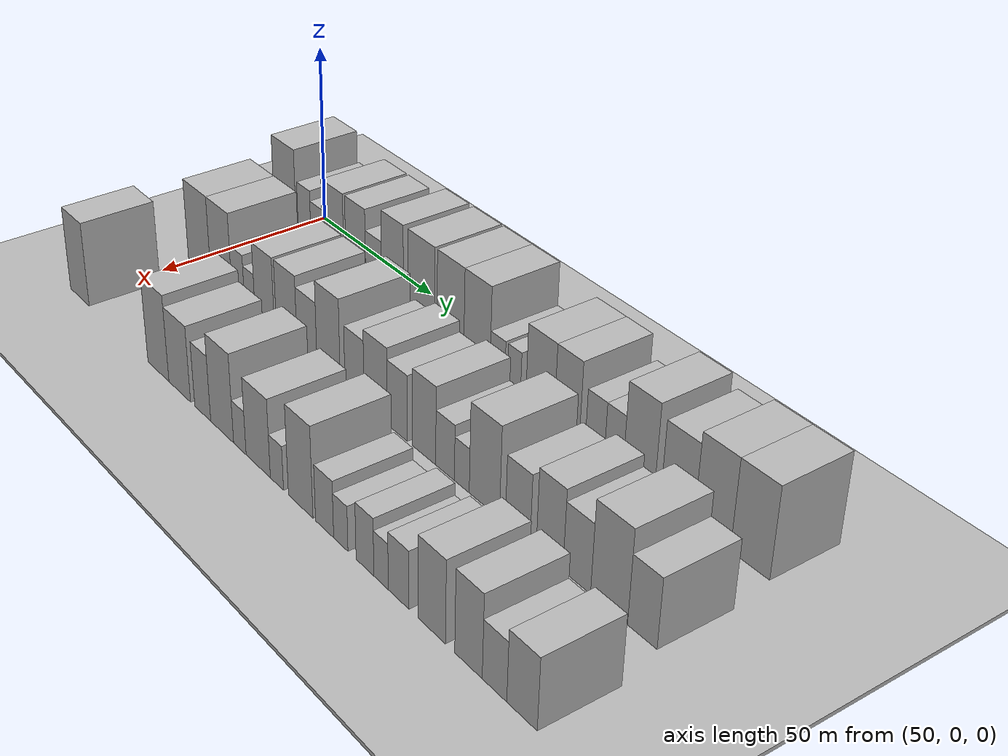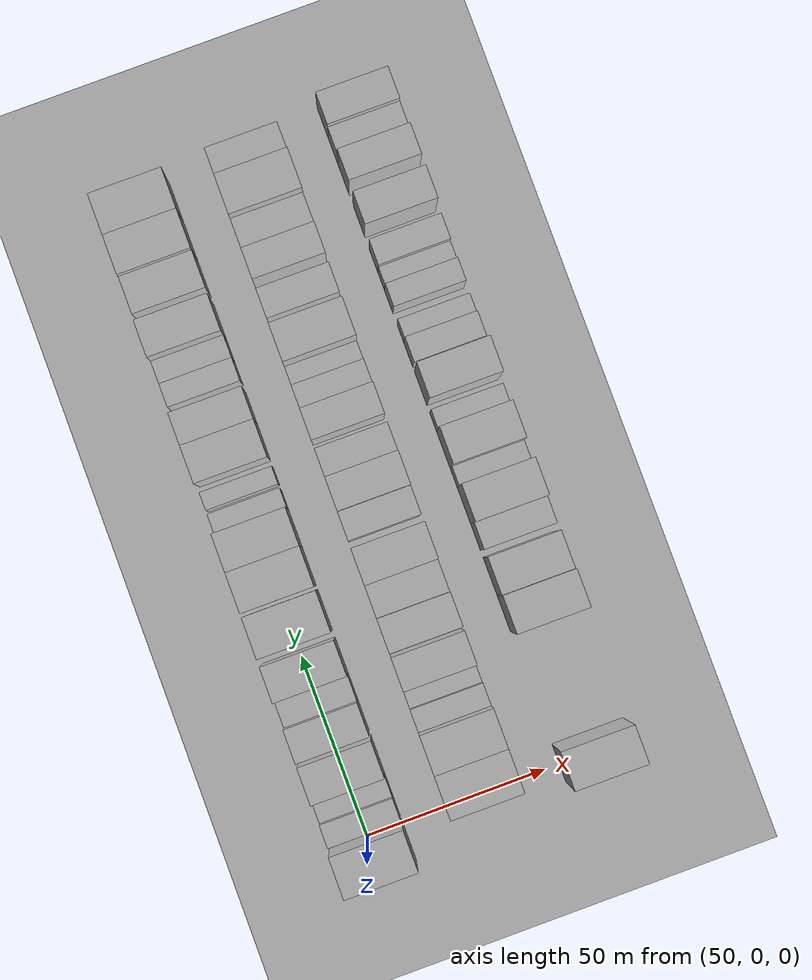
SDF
<sdf version="1.6">
 <world name="default">
  <include><name>ground_plane_1</name><uri>model://HANNAS_ground_plane</uri></include>
  <include>
   <name>ground_plane_2</name>
   <uri>model://HANNAS_ground_plane</uri>
   <pose>100 0 0  0 0 0</pose>
  </include>
  <model name="building_40">
   <static>1</static>
   <pose>50.0000 -4.5184 0 0.000000 0.000000 0.000000</pose>
   <link name="link">
    <pose>0 0 12.00 0 0 0</pose>
    <collision name="collision"><geometry><box><size>20.0000 11.3580 24.0000</size></box></geometry></collision>
    <visual name="visual">
     <cast_shadows>0</cast_shadows>
     <geometry><box><size>20.0000 11.3580 24.0000</size></box></geometry>
     <material>
      <script>
       <uri>model://HANNAS_wall/materials/scripts</uri>
       <uri>model://HANNAS_wall/materials/textures</uri>
       <name>vrc/HANNAS_wall</name>
      </script>
     </material>
    </visual>
   </link>
  </model>
  <model name="building_41">
   <static>1</static>
   <pose>50.0000 5.3556 0 0.000000 0.000000 0.000000</pose>
   <link name="link">
    <pose>0 0 7.50 0 0 0</pose>
    <collision name="collision"><geometry><box><size>20.0000 6.3901 15.0000</size></box></geometry></collision>
    <visual name="visual">
     <cast_shadows>0</cast_shadows>
     <geometry><box><size>20.0000 6.3901 15.0000</size></box></geometry>
     <material>
      <script>
       <uri>model://HANNAS_wall/materials/scripts</uri>
       <uri>model://HANNAS_wall/materials/textures</uri>
       <name>vrc/HANNAS_wall</name>
      </script>
     </material>
    </visual>
   </link>
  </model>
  <model name="building_42">
   <static>1</static>
   <pose>50.0000 11.5126 0 0.000000 0.000000 0.000000</pose>
   <link name="link">
    <pose>0 0 6.00 0 0 0</pose>
    <collision name="collision"><geometry><box><size>20.0000 5.9239 12.0000</size></box></geometry></collision>
    <visual name="visual">
     <cast_shadows>0</cast_shadows>
     <geometry><box><size>20.0000 5.9239 12.0000</size></box></geometry>
     <material>
      <script>
       <uri>model://HANNAS_wall/materials/scripts</uri>
       <uri>model://HANNAS_wall/materials/textures</uri>
       <name>vrc/HANNAS_wall</name>
      </script>
     </material>
    </visual>
   </link>
  </model>
  <model name="building_43">
   <static>1</static>
   <pose>50.0000 19.5705 0 0.000000 0.000000 0.000000</pose>
   <link name="link">
    <pose>0 0 10.50 0 0 0</pose>
    <collision name="collision"><geometry><box><size>20.0000 10.1919 21.0000</size></box></geometry></collision>
    <visual name="visual">
     <cast_shadows>0</cast_shadows>
     <geometry><box><size>20.0000 10.1919 21.0000</size></box></geometry>
     <material>
      <script>
       <uri>model://HANNAS_wall/materials/scripts</uri>
       <uri>model://HANNAS_wall/materials/textures</uri>
       <name>vrc/HANNAS_wall</name>
      </script>
     </material>
    </visual>
   </link>
  </model>
  <model name="building_44">
   <static>1</static>
   <pose>50.0000 30.2833 0 0.000000 0.000000 0.000000</pose>
   <link name="link">
    <pose>0 0 10.50 0 0 0</pose>
    <collision name="collision"><geometry><box><size>20.0000 9.2336 21.0000</size></box></geometry></collision>
    <visual name="visual">
     <cast_shadows>0</cast_shadows>
     <geometry><box><size>20.0000 9.2336 21.0000</size></box></geometry>
     <material>
      <script>
       <uri>model://HANNAS_wall/materials/scripts</uri>
       <uri>model://HANNAS_wall/materials/textures</uri>
       <name>vrc/HANNAS_wall</name>
      </script>
     </material>
    </visual>
   </link>
  </model>
  <model name="building_45">
   <static>1</static>
   <pose>50.0000 38.5328 0 0.000000 0.000000 0.000000</pose>
   <link name="link">
    <pose>0 0 7.50 0 0 0</pose>
    <collision name="collision"><geometry><box><size>20.0000 7.2654 15.0000</size></box></geometry></collision>
    <visual name="visual">
     <cast_shadows>0</cast_shadows>
     <geometry><box><size>20.0000 7.2654 15.0000</size></box></geometry>
     <material>
      <script>
       <uri>model://HANNAS_wall/materials/scripts</uri>
       <uri>model://HANNAS_wall/materials/textures</uri>
       <name>vrc/HANNAS_wall</name>
      </script>
     </material>
    </visual>
   </link>
  </model>
  <model name="building_46">
   <static>1</static>
   <pose>50.0000 47.0347 0 0.000000 0.000000 0.000000</pose>
   <link name="link">
    <pose>0 0 12.00 0 0 0</pose>
    <collision name="collision"><geometry><box><size>20.0000 9.7384 24.0000</size></box></geometry></collision>
    <visual name="visual">
     <cast_shadows>0</cast_shadows>
     <geometry><box><size>20.0000 9.7384 24.0000</size></box></geometry>
     <material>
      <script>
       <uri>model://HANNAS_wall/materials/scripts</uri>
       <uri>model://HANNAS_wall/materials/textures</uri>
       <name>vrc/HANNAS_wall</name>
      </script>
     </material>
    </visual>
   </link>
  </model>
  <model name="building_47">
   <static>1</static>
   <pose>50.0000 59.5788 0 0.000000 0.000000 0.000000</pose>
   <link name="link">
    <pose>0 0 12.00 0 0 0</pose>
    <collision name="collision"><geometry><box><size>20.0000 11.3498 24.0000</size></box></geometry></collision>
    <visual name="visual">
     <cast_shadows>0</cast_shadows>
     <geometry><box><size>20.0000 11.3498 24.0000</size></box></geometry>
     <material>
      <script>
       <uri>model://HANNAS_wall/materials/scripts</uri>
       <uri>model://HANNAS_wall/materials/textures</uri>
       <name>vrc/HANNAS_wall</name>
      </script>
     </material>
    </visual>
   </link>
  </model>
  <model name="building_48">
   <static>1</static>
   <pose>50.0000 71.7756 0 0.000000 0.000000 0.000000</pose>
   <link name="link">
    <pose>0 0 12.00 0 0 0</pose>
    <collision name="collision"><geometry><box><size>20.0000 11.0438 24.0000</size></box></geometry></collision>
    <visual name="visual">
     <cast_shadows>0</cast_shadows>
     <geometry><box><size>20.0000 11.0438 24.0000</size></box></geometry>
     <material>
      <script>
       <uri>model://HANNAS_wall/materials/scripts</uri>
       <uri>model://HANNAS_wall/materials/textures</uri>
       <name>vrc/HANNAS_wall</name>
      </script>
     </material>
    </visual>
   </link>
  </model>
  <model name="building_49">
   <static>1</static>
   <pose>50.0000 82.5181 0 0.000000 0.000000 0.000000</pose>
   <link name="link">
    <pose>0 0 12.00 0 0 0</pose>
    <collision name="collision"><geometry><box><size>20.0000 10.4412 24.0000</size></box></geometry></collision>
    <visual name="visual">
     <cast_shadows>0</cast_shadows>
     <geometry><box><size>20.0000 10.4412 24.0000</size></box></geometry>
     <material>
      <script>
       <uri>model://HANNAS_wall/materials/scripts</uri>
       <uri>model://HANNAS_wall/materials/textures</uri>
       <name>vrc/HANNAS_wall</name>
      </script>
     </material>
    </visual>
   </link>
  </model>
  <model name="building_50">
   <static>1</static>
   <pose>50.0000 90.5977 0 0.000000 0.000000 0.000000</pose>
   <link name="link">
    <pose>0 0 6.00 0 0 0</pose>
    <collision name="collision"><geometry><box><size>20.0000 5.7179 12.0000</size></box></geometry></collision>
    <visual name="visual">
     <cast_shadows>0</cast_shadows>
     <geometry><box><size>20.0000 5.7179 12.0000</size></box></geometry>
     <material>
      <script>
       <uri>model://HANNAS_wall/materials/scripts</uri>
       <uri>model://HANNAS_wall/materials/textures</uri>
       <name>vrc/HANNAS_wall</name>
      </script>
     </material>
    </visual>
   </link>
  </model>
  <model name="building_51">
   <static>1</static>
   <pose>50.0000 96.9436 0 0.000000 0.000000 0.000000</pose>
   <link name="link">
    <pose>0 0 6.00 0 0 0</pose>
    <collision name="collision"><geometry><box><size>20.0000 4.9740 12.0000</size></box></geometry></collision>
    <visual name="visual">
     <cast_shadows>0</cast_shadows>
     <geometry><box><size>20.0000 4.9740 12.0000</size></box></geometry>
     <material>
      <script>
       <uri>model://HANNAS_wall/materials/scripts</uri>
       <uri>model://HANNAS_wall/materials/textures</uri>
       <name>vrc/HANNAS_wall</name>
      </script>
     </material>
    </visual>
   </link>
  </model>
  <model name="building_52">
   <static>1</static>
   <pose>50.0000 106.6325 0 0.000000 0.000000 0.000000</pose>
   <link name="link">
    <pose>0 0 10.50 0 0 0</pose>
    <collision name="collision"><geometry><box><size>20.0000 10.4038 21.0000</size></box></geometry></collision>
    <visual name="visual">
     <cast_shadows>0</cast_shadows>
     <geometry><box><size>20.0000 10.4038 21.0000</size></box></geometry>
     <material>
      <script>
       <uri>model://HANNAS_wall/materials/scripts</uri>
       <uri>model://HANNAS_wall/materials/textures</uri>
       <name>vrc/HANNAS_wall</name>
      </script>
     </material>
    </visual>
   </link>
  </model>
  <model name="building_53">
   <static>1</static>
   <pose>50.0000 116.3029 0 0.000000 0.000000 0.000000</pose>
   <link name="link">
    <pose>0 0 10.50 0 0 0</pose>
    <collision name="collision"><geometry><box><size>20.0000 8.9370 21.0000</size></box></geometry></collision>
    <visual name="visual">
     <cast_shadows>0</cast_shadows>
     <geometry><box><size>20.0000 8.9370 21.0000</size></box></geometry>
     <material>
      <script>
       <uri>model://HANNAS_wall/materials/scripts</uri>
       <uri>model://HANNAS_wall/materials/textures</uri>
       <name>vrc/HANNAS_wall</name>
      </script>
     </material>
    </visual>
   </link>
  </model>
  <model name="building_54">
   <static>1</static>
   <pose>50.0000 126.0324 0 0.000000 0.000000 0.000000</pose>
   <link name="link">
    <pose>0 0 7.50 0 0 0</pose>
    <collision name="collision"><geometry><box><size>20.0000 6.5221 15.0000</size></box></geometry></collision>
    <visual name="visual">
     <cast_shadows>0</cast_shadows>
     <geometry><box><size>20.0000 6.5221 15.0000</size></box></geometry>
     <material>
      <script>
       <uri>model://HANNAS_wall/materials/scripts</uri>
       <uri>model://HANNAS_wall/materials/textures</uri>
       <name>vrc/HANNAS_wall</name>
      </script>
     </material>
    </visual>
   </link>
  </model>
  <model name="building_55">
   <static>1</static>
   <pose>50.0000 132.4087 0 0.000000 0.000000 0.000000</pose>
   <link name="link">
    <pose>0 0 7.50 0 0 0</pose>
    <collision name="collision"><geometry><box><size>20.0000 6.2305 15.0000</size></box></geometry></collision>
    <visual name="visual">
     <cast_shadows>0</cast_shadows>
     <geometry><box><size>20.0000 6.2305 15.0000</size></box></geometry>
     <material>
      <script>
       <uri>model://HANNAS_wall/materials/scripts</uri>
       <uri>model://HANNAS_wall/materials/textures</uri>
       <name>vrc/HANNAS_wall</name>
      </script>
     </material>
    </visual>
   </link>
  </model>
  <model name="building_56">
   <static>1</static>
   <pose>50.0000 140.6190 0 0.000000 0.000000 0.000000</pose>
   <link name="link">
    <pose>0 0 12.00 0 0 0</pose>
    <collision name="collision"><geometry><box><size>20.0000 10.1901 24.0000</size></box></geometry></collision>
    <visual name="visual">
     <cast_shadows>0</cast_shadows>
     <geometry><box><size>20.0000 10.1901 24.0000</size></box></geometry>
     <material>
      <script>
       <uri>model://HANNAS_wall/materials/scripts</uri>
       <uri>model://HANNAS_wall/materials/textures</uri>
       <name>vrc/HANNAS_wall</name>
      </script>
     </material>
    </visual>
   </link>
  </model>
  <model name="building_57">
   <static>1</static>
   <pose>50.0000 152.8733 0 0.000000 0.000000 0.000000</pose>
   <link name="link">
    <pose>0 0 10.50 0 0 0</pose>
    <collision name="collision"><geometry><box><size>20.0000 10.3183 21.0000</size></box></geometry></collision>
    <visual name="visual">
     <cast_shadows>0</cast_shadows>
     <geometry><box><size>20.0000 10.3183 21.0000</size></box></geometry>
     <material>
      <script>
       <uri>model://HANNAS_wall/materials/scripts</uri>
       <uri>model://HANNAS_wall/materials/textures</uri>
       <name>vrc/HANNAS_wall</name>
      </script>
     </material>
    </visual>
   </link>
  </model>
  <model name="building_58">
   <static>1</static>
   <pose>50.0000 163.4792 0 0.000000 0.000000 0.000000</pose>
   <link name="link">
    <pose>0 0 12.00 0 0 0</pose>
    <collision name="collision"><geometry><box><size>20.0000 10.8936 24.0000</size></box></geometry></collision>
    <visual name="visual">
     <cast_shadows>0</cast_shadows>
     <geometry><box><size>20.0000 10.8936 24.0000</size></box></geometry>
     <material>
      <script>
       <uri>model://HANNAS_wall/materials/scripts</uri>
       <uri>model://HANNAS_wall/materials/textures</uri>
       <name>vrc/HANNAS_wall</name>
      </script>
     </material>
    </visual>
   </link>
  </model>
  <model name="building_59">
   <static>1</static>
   <pose>50.0000 174.5568 0 0.000000 0.000000 0.000000</pose>
   <link name="link">
    <pose>0 0 12.00 0 0 0</pose>
    <collision name="collision"><geometry><box><size>20.0000 11.2616 24.0000</size></box></geometry></collision>
    <visual name="visual">
     <cast_shadows>0</cast_shadows>
     <geometry><box><size>20.0000 11.2616 24.0000</size></box></geometry>
     <material>
      <script>
       <uri>model://HANNAS_wall/materials/scripts</uri>
       <uri>model://HANNAS_wall/materials/textures</uri>
       <name>vrc/HANNAS_wall</name>
      </script>
     </material>
    </visual>
   </link>
  </model>
  <model name="building_117">
   <static>1</static>
   <pose>82.0000 5.0783 0 0.000000 0.000000 0.000000</pose>
   <link name="link">
    <pose>0 0 12.00 0 0 0</pose>
    <collision name="collision"><geometry><box><size>20.0000 11.8753 24.0000</size></box></geometry></collision>
    <visual name="visual">
     <cast_shadows>0</cast_shadows>
     <geometry><box><size>20.0000 11.8753 24.0000</size></box></geometry>
     <material>
      <script>
       <uri>model://HANNAS_wall/materials/scripts</uri>
       <uri>model://HANNAS_wall/materials/textures</uri>
       <name>vrc/HANNAS_wall</name>
      </script>
     </material>
    </visual>
   </link>
  </model>
  <model name="building_118">
   <static>1</static>
   <pose>82.0000 16.4562 0 0.000000 0.000000 0.000000</pose>
   <link name="link">
    <pose>0 0 12.00 0 0 0</pose>
    <collision name="collision"><geometry><box><size>20.0000 10.8805 24.0000</size></box></geometry></collision>
    <visual name="visual">
     <cast_shadows>0</cast_shadows>
     <geometry><box><size>20.0000 10.8805 24.0000</size></box></geometry>
     <material>
      <script>
       <uri>model://HANNAS_wall/materials/scripts</uri>
       <uri>model://HANNAS_wall/materials/textures</uri>
       <name>vrc/HANNAS_wall</name>
      </script>
     </material>
    </visual>
   </link>
  </model>
  <model name="building_119">
   <static>1</static>
   <pose>82.0000 25.0287 0 0.000000 0.000000 0.000000</pose>
   <link name="link">
    <pose>0 0 7.50 0 0 0</pose>
    <collision name="collision"><geometry><box><size>20.0000 6.2645 15.0000</size></box></geometry></collision>
    <visual name="visual">
     <cast_shadows>0</cast_shadows>
     <geometry><box><size>20.0000 6.2645 15.0000</size></box></geometry>
     <material>
      <script>
       <uri>model://HANNAS_wall/materials/scripts</uri>
       <uri>model://HANNAS_wall/materials/textures</uri>
       <name>vrc/HANNAS_wall</name>
      </script>
     </material>
    </visual>
   </link>
  </model>
  <model name="building_120">
   <static>1</static>
   <pose>82.0000 30.7223 0 0.000000 0.000000 0.000000</pose>
   <link name="link">
    <pose>0 0 6.00 0 0 0</pose>
    <collision name="collision"><geometry><box><size>20.0000 5.1226 12.0000</size></box></geometry></collision>
    <visual name="visual">
     <cast_shadows>0</cast_shadows>
     <geometry><box><size>20.0000 5.1226 12.0000</size></box></geometry>
     <material>
      <script>
       <uri>model://HANNAS_wall/materials/scripts</uri>
       <uri>model://HANNAS_wall/materials/textures</uri>
       <name>vrc/HANNAS_wall</name>
      </script>
     </material>
    </visual>
   </link>
  </model>
  <model name="building_121">
   <static>1</static>
   <pose>82.0000 37.9292 0 0.000000 0.000000 0.000000</pose>
   <link name="link">
    <pose>0 0 10.50 0 0 0</pose>
    <collision name="collision"><geometry><box><size>20.0000 9.2912 21.0000</size></box></geometry></collision>
    <visual name="visual">
     <cast_shadows>0</cast_shadows>
     <geometry><box><size>20.0000 9.2912 21.0000</size></box></geometry>
     <material>
      <script>
       <uri>model://HANNAS_wall/materials/scripts</uri>
       <uri>model://HANNAS_wall/materials/textures</uri>
       <name>vrc/HANNAS_wall</name>
      </script>
     </material>
    </visual>
   </link>
  </model>
  <model name="building_122">
   <static>1</static>
   <pose>82.0000 48.3367 0 0.000000 0.000000 0.000000</pose>
   <link name="link">
    <pose>0 0 10.50 0 0 0</pose>
    <collision name="collision"><geometry><box><size>20.0000 9.5238 21.0000</size></box></geometry></collision>
    <visual name="visual">
     <cast_shadows>0</cast_shadows>
     <geometry><box><size>20.0000 9.5238 21.0000</size></box></geometry>
     <material>
      <script>
       <uri>model://HANNAS_wall/materials/scripts</uri>
       <uri>model://HANNAS_wall/materials/textures</uri>
       <name>vrc/HANNAS_wall</name>
      </script>
     </material>
    </visual>
   </link>
  </model>
  <model name="building_123">
   <static>1</static>
   <pose>82.0000 57.5635 0 0.000000 0.000000 0.000000</pose>
   <link name="link">
    <pose>0 0 9.00 0 0 0</pose>
    <collision name="collision"><geometry><box><size>20.0000 8.9298 18.0000</size></box></geometry></collision>
    <visual name="visual">
     <cast_shadows>0</cast_shadows>
     <geometry><box><size>20.0000 8.9298 18.0000</size></box></geometry>
     <material>
      <script>
       <uri>model://HANNAS_wall/materials/scripts</uri>
       <uri>model://HANNAS_wall/materials/textures</uri>
       <name>vrc/HANNAS_wall</name>
      </script>
     </material>
    </visual>
   </link>
  </model>
  <model name="building_124">
   <static>1</static>
   <pose>82.0000 67.0926 0 0.000000 0.000000 0.000000</pose>
   <link name="link">
    <pose>0 0 12.00 0 0 0</pose>
    <collision name="collision"><geometry><box><size>20.0000 10.1286 24.0000</size></box></geometry></collision>
    <visual name="visual">
     <cast_shadows>0</cast_shadows>
     <geometry><box><size>20.0000 10.1286 24.0000</size></box></geometry>
     <material>
      <script>
       <uri>model://HANNAS_wall/materials/scripts</uri>
       <uri>model://HANNAS_wall/materials/textures</uri>
       <name>vrc/HANNAS_wall</name>
      </script>
     </material>
    </visual>
   </link>
  </model>
  <model name="building_125">
   <static>1</static>
   <pose>82.0000 78.1693 0 0.000000 0.000000 0.000000</pose>
   <link name="link">
    <pose>0 0 9.00 0 0 0</pose>
    <collision name="collision"><geometry><box><size>20.0000 8.0248 18.0000</size></box></geometry></collision>
    <visual name="visual">
     <cast_shadows>0</cast_shadows>
     <geometry><box><size>20.0000 8.0248 18.0000</size></box></geometry>
     <material>
      <script>
       <uri>model://HANNAS_wall/materials/scripts</uri>
       <uri>model://HANNAS_wall/materials/textures</uri>
       <name>vrc/HANNAS_wall</name>
      </script>
     </material>
    </visual>
   </link>
  </model>
  <model name="building_126">
   <static>1</static>
   <pose>82.0000 86.8775 0 0.000000 0.000000 0.000000</pose>
   <link name="link">
    <pose>0 0 10.50 0 0 0</pose>
    <collision name="collision"><geometry><box><size>20.0000 9.3914 21.0000</size></box></geometry></collision>
    <visual name="visual">
     <cast_shadows>0</cast_shadows>
     <geometry><box><size>20.0000 9.3914 21.0000</size></box></geometry>
     <material>
      <script>
       <uri>model://HANNAS_wall/materials/scripts</uri>
       <uri>model://HANNAS_wall/materials/textures</uri>
       <name>vrc/HANNAS_wall</name>
      </script>
     </material>
    </visual>
   </link>
  </model>
  <model name="building_127">
   <static>1</static>
   <pose>82.0000 95.5494 0 0.000000 0.000000 0.000000</pose>
   <link name="link">
    <pose>0 0 9.00 0 0 0</pose>
    <collision name="collision"><geometry><box><size>20.0000 7.9524 18.0000</size></box></geometry></collision>
    <visual name="visual">
     <cast_shadows>0</cast_shadows>
     <geometry><box><size>20.0000 7.9524 18.0000</size></box></geometry>
     <material>
      <script>
       <uri>model://HANNAS_wall/materials/scripts</uri>
       <uri>model://HANNAS_wall/materials/textures</uri>
       <name>vrc/HANNAS_wall</name>
      </script>
     </material>
    </visual>
   </link>
  </model>
  <model name="building_128">
   <static>1</static>
   <pose>82.0000 105.9074 0 0.000000 0.000000 0.000000</pose>
   <link name="link">
    <pose>0 0 10.50 0 0 0</pose>
    <collision name="collision"><geometry><box><size>20.0000 8.7637 21.0000</size></box></geometry></collision>
    <visual name="visual">
     <cast_shadows>0</cast_shadows>
     <geometry><box><size>20.0000 8.7637 21.0000</size></box></geometry>
     <material>
      <script>
       <uri>model://HANNAS_wall/materials/scripts</uri>
       <uri>model://HANNAS_wall/materials/textures</uri>
       <name>vrc/HANNAS_wall</name>
      </script>
     </material>
    </visual>
   </link>
  </model>
  <model name="building_129">
   <static>1</static>
   <pose>82.0000 113.7479 0 0.000000 0.000000 0.000000</pose>
   <link name="link">
    <pose>0 0 7.50 0 0 0</pose>
    <collision name="collision"><geometry><box><size>20.0000 6.9171 15.0000</size></box></geometry></collision>
    <visual name="visual">
     <cast_shadows>0</cast_shadows>
     <geometry><box><size>20.0000 6.9171 15.0000</size></box></geometry>
     <material>
      <script>
       <uri>model://HANNAS_wall/materials/scripts</uri>
       <uri>model://HANNAS_wall/materials/textures</uri>
       <name>vrc/HANNAS_wall</name>
      </script>
     </material>
    </visual>
   </link>
  </model>
  <model name="building_130">
   <static>1</static>
   <pose>82.0000 119.8962 0 0.000000 0.000000 0.000000</pose>
   <link name="link">
    <pose>0 0 6.00 0 0 0</pose>
    <collision name="collision"><geometry><box><size>20.0000 5.3795 12.0000</size></box></geometry></collision>
    <visual name="visual">
     <cast_shadows>0</cast_shadows>
     <geometry><box><size>20.0000 5.3795 12.0000</size></box></geometry>
     <material>
      <script>
       <uri>model://HANNAS_wall/materials/scripts</uri>
       <uri>model://HANNAS_wall/materials/textures</uri>
       <name>vrc/HANNAS_wall</name>
      </script>
     </material>
    </visual>
   </link>
  </model>
  <model name="building_131">
   <static>1</static>
   <pose>82.0000 127.9002 0 0.000000 0.000000 0.000000</pose>
   <link name="link">
    <pose>0 0 12.00 0 0 0</pose>
    <collision name="collision"><geometry><box><size>20.0000 10.6285 24.0000</size></box></geometry></collision>
    <visual name="visual">
     <cast_shadows>0</cast_shadows>
     <geometry><box><size>20.0000 10.6285 24.0000</size></box></geometry>
     <material>
      <script>
       <uri>model://HANNAS_wall/materials/scripts</uri>
       <uri>model://HANNAS_wall/materials/textures</uri>
       <name>vrc/HANNAS_wall</name>
      </script>
     </material>
    </visual>
   </link>
  </model>
  <model name="building_132">
   <static>1</static>
   <pose>82.0000 139.3819 0 0.000000 0.000000 0.000000</pose>
   <link name="link">
    <pose>0 0 9.00 0 0 0</pose>
    <collision name="collision"><geometry><box><size>20.0000 8.3347 18.0000</size></box></geometry></collision>
    <visual name="visual">
     <cast_shadows>0</cast_shadows>
     <geometry><box><size>20.0000 8.3347 18.0000</size></box></geometry>
     <material>
      <script>
       <uri>model://HANNAS_wall/materials/scripts</uri>
       <uri>model://HANNAS_wall/materials/textures</uri>
       <name>vrc/HANNAS_wall</name>
      </script>
     </material>
    </visual>
   </link>
  </model>
  <model name="building_133">
   <static>1</static>
   <pose>82.0000 149.8650 0 0.000000 0.000000 0.000000</pose>
   <link name="link">
    <pose>0 0 10.50 0 0 0</pose>
    <collision name="collision"><geometry><box><size>20.0000 8.6315 21.0000</size></box></geometry></collision>
    <visual name="visual">
     <cast_shadows>0</cast_shadows>
     <geometry><box><size>20.0000 8.6315 21.0000</size></box></geometry>
     <material>
      <script>
       <uri>model://HANNAS_wall/materials/scripts</uri>
       <uri>model://HANNAS_wall/materials/textures</uri>
       <name>vrc/HANNAS_wall</name>
      </script>
     </material>
    </visual>
   </link>
  </model>
  <model name="building_134">
   <static>1</static>
   <pose>82.0000 158.4882 0 0.000000 0.000000 0.000000</pose>
   <link name="link">
    <pose>0 0 9.00 0 0 0</pose>
    <collision name="collision"><geometry><box><size>20.0000 8.6150 18.0000</size></box></geometry></collision>
    <visual name="visual">
     <cast_shadows>0</cast_shadows>
     <geometry><box><size>20.0000 8.6150 18.0000</size></box></geometry>
     <material>
      <script>
       <uri>model://HANNAS_wall/materials/scripts</uri>
       <uri>model://HANNAS_wall/materials/textures</uri>
       <name>vrc/HANNAS_wall</name>
      </script>
     </material>
    </visual>
   </link>
  </model>
  <model name="building_135">
   <static>1</static>
   <pose>82.0000 168.3484 0 0.000000 0.000000 0.000000</pose>
   <link name="link">
    <pose>0 0 12.00 0 0 0</pose>
    <collision name="collision"><geometry><box><size>20.0000 11.1055 24.0000</size></box></geometry></collision>
    <visual name="visual">
     <cast_shadows>0</cast_shadows>
     <geometry><box><size>20.0000 11.1055 24.0000</size></box></geometry>
     <material>
      <script>
       <uri>model://HANNAS_wall/materials/scripts</uri>
       <uri>model://HANNAS_wall/materials/textures</uri>
       <name>vrc/HANNAS_wall</name>
      </script>
     </material>
    </visual>
   </link>
  </model>
  <model name="building_136">
   <static>1</static>
   <pose>82.0000 178.1670 0 0.000000 0.000000 0.000000</pose>
   <link name="link">
    <pose>0 0 9.00 0 0 0</pose>
    <collision name="collision"><geometry><box><size>20.0000 8.5316 18.0000</size></box></geometry></collision>
    <visual name="visual">
     <cast_shadows>0</cast_shadows>
     <geometry><box><size>20.0000 8.5316 18.0000</size></box></geometry>
     <material>
      <script>
       <uri>model://HANNAS_wall/materials/scripts</uri>
       <uri>model://HANNAS_wall/materials/textures</uri>
       <name>vrc/HANNAS_wall</name>
      </script>
     </material>
    </visual>
   </link>
  </model>
  <model name="building_198">
   <static>1</static>
   <pose>114.0000 0.5381 0 0.000000 0.000000 0.000000</pose>
   <link name="link">
    <pose>0 0 12.00 0 0 0</pose>
    <collision name="collision"><geometry><box><size>20.0000 10.5245 24.0000</size></box></geometry></collision>
    <visual name="visual">
     <cast_shadows>0</cast_shadows>
     <geometry><box><size>20.0000 10.5245 24.0000</size></box></geometry>
     <material>
      <script>
       <uri>model://HANNAS_wall/materials/scripts</uri>
       <uri>model://HANNAS_wall/materials/textures</uri>
       <name>vrc/HANNAS_wall</name>
      </script>
     </material>
    </visual>
   </link>
  </model>
  <model name="building_199">
   <static>1</static>
   <pose>114.0000 42.4785 0 0.000000 0.000000 0.000000</pose>
   <link name="link">
    <pose>0 0 12.00 0 0 0</pose>
    <collision name="collision"><geometry><box><size>20.0000 10.4521 24.0000</size></box></geometry></collision>
    <visual name="visual">
     <cast_shadows>0</cast_shadows>
     <geometry><box><size>20.0000 10.4521 24.0000</size></box></geometry>
     <material>
      <script>
       <uri>model://HANNAS_wall/materials/scripts</uri>
       <uri>model://HANNAS_wall/materials/textures</uri>
       <name>vrc/HANNAS_wall</name>
      </script>
     </material>
    </visual>
   </link>
  </model>
  <model name="building_200">
   <static>1</static>
   <pose>114.0000 52.9152 0 0.000000 0.000000 0.000000</pose>
   <link name="link">
    <pose>0 0 10.50 0 0 0</pose>
    <collision name="collision"><geometry><box><size>20.0000 10.4213 21.0000</size></box></geometry></collision>
    <visual name="visual">
     <cast_shadows>0</cast_shadows>
     <geometry><box><size>20.0000 10.4213 21.0000</size></box></geometry>
     <material>
      <script>
       <uri>model://HANNAS_wall/materials/scripts</uri>
       <uri>model://HANNAS_wall/materials/textures</uri>
       <name>vrc/HANNAS_wall</name>
      </script>
     </material>
    </visual>
   </link>
  </model>
  <model name="building_201">
   <static>1</static>
   <pose>114.0000 63.8173 0 0.000000 0.000000 0.000000</pose>
   <link name="link">
    <pose>0 0 9.00 0 0 0</pose>
    <collision name="collision"><geometry><box><size>20.0000 7.3829 18.0000</size></box></geometry></collision>
    <visual name="visual">
     <cast_shadows>0</cast_shadows>
     <geometry><box><size>20.0000 7.3829 18.0000</size></box></geometry>
     <material>
      <script>
       <uri>model://HANNAS_wall/materials/scripts</uri>
       <uri>model://HANNAS_wall/materials/textures</uri>
       <name>vrc/HANNAS_wall</name>
      </script>
     </material>
    </visual>
   </link>
  </model>
  <model name="building_202">
   <static>1</static>
   <pose>114.0000 72.6660 0 0.000000 0.000000 0.000000</pose>
   <link name="link">
    <pose>0 0 12.00 0 0 0</pose>
    <collision name="collision"><geometry><box><size>20.0000 10.3144 24.0000</size></box></geometry></collision>
    <visual name="visual">
     <cast_shadows>0</cast_shadows>
     <geometry><box><size>20.0000 10.3144 24.0000</size></box></geometry>
     <material>
      <script>
       <uri>model://HANNAS_wall/materials/scripts</uri>
       <uri>model://HANNAS_wall/materials/textures</uri>
       <name>vrc/HANNAS_wall</name>
      </script>
     </material>
    </visual>
   </link>
  </model>
  <model name="building_203">
   <static>1</static>
   <pose>114.0000 80.5458 0 0.000000 0.000000 0.000000</pose>
   <link name="link">
    <pose>0 0 6.00 0 0 0</pose>
    <collision name="collision"><geometry><box><size>20.0000 5.4453 12.0000</size></box></geometry></collision>
    <visual name="visual">
     <cast_shadows>0</cast_shadows>
     <geometry><box><size>20.0000 5.4453 12.0000</size></box></geometry>
     <material>
      <script>
       <uri>model://HANNAS_wall/materials/scripts</uri>
       <uri>model://HANNAS_wall/materials/textures</uri>
       <name>vrc/HANNAS_wall</name>
      </script>
     </material>
    </visual>
   </link>
  </model>
  <model name="building_204">
   <static>1</static>
   <pose>114.0000 88.4292 0 0.000000 0.000000 0.000000</pose>
   <link name="link">
    <pose>0 0 10.50 0 0 0</pose>
    <collision name="collision"><geometry><box><size>20.0000 10.3215 21.0000</size></box></geometry></collision>
    <visual name="visual">
     <cast_shadows>0</cast_shadows>
     <geometry><box><size>20.0000 10.3215 21.0000</size></box></geometry>
     <material>
      <script>
       <uri>model://HANNAS_wall/materials/scripts</uri>
       <uri>model://HANNAS_wall/materials/textures</uri>
       <name>vrc/HANNAS_wall</name>
      </script>
     </material>
    </visual>
   </link>
  </model>
  <model name="building_205">
   <static>1</static>
   <pose>114.0000 96.3067 0 0.000000 0.000000 0.000000</pose>
   <link name="link">
    <pose>0 0 6.00 0 0 0</pose>
    <collision name="collision"><geometry><box><size>20.0000 5.4336 12.0000</size></box></geometry></collision>
    <visual name="visual">
     <cast_shadows>0</cast_shadows>
     <geometry><box><size>20.0000 5.4336 12.0000</size></box></geometry>
     <material>
      <script>
       <uri>model://HANNAS_wall/materials/scripts</uri>
       <uri>model://HANNAS_wall/materials/textures</uri>
       <name>vrc/HANNAS_wall</name>
      </script>
     </material>
    </visual>
   </link>
  </model>
  <model name="building_206">
   <static>1</static>
   <pose>114.0000 105.9161 0 0.000000 0.000000 0.000000</pose>
   <link name="link">
    <pose>0 0 12.00 0 0 0</pose>
    <collision name="collision"><geometry><box><size>20.0000 9.7851 24.0000</size></box></geometry></collision>
    <visual name="visual">
     <cast_shadows>0</cast_shadows>
     <geometry><box><size>20.0000 9.7851 24.0000</size></box></geometry>
     <material>
      <script>
       <uri>model://HANNAS_wall/materials/scripts</uri>
       <uri>model://HANNAS_wall/materials/textures</uri>
       <name>vrc/HANNAS_wall</name>
      </script>
     </material>
    </visual>
   </link>
  </model>
  <model name="building_207">
   <static>1</static>
   <pose>114.0000 115.2936 0 0.000000 0.000000 0.000000</pose>
   <link name="link">
    <pose>0 0 7.50 0 0 0</pose>
    <collision name="collision"><geometry><box><size>20.0000 6.9700 15.0000</size></box></geometry></collision>
    <visual name="visual">
     <cast_shadows>0</cast_shadows>
     <geometry><box><size>20.0000 6.9700 15.0000</size></box></geometry>
     <material>
      <script>
       <uri>model://HANNAS_wall/materials/scripts</uri>
       <uri>model://HANNAS_wall/materials/textures</uri>
       <name>vrc/HANNAS_wall</name>
      </script>
     </material>
    </visual>
   </link>
  </model>
  <model name="building_208">
   <static>1</static>
   <pose>114.0000 121.4662 0 0.000000 0.000000 0.000000</pose>
   <link name="link">
    <pose>0 0 6.00 0 0 0</pose>
    <collision name="collision"><geometry><box><size>20.0000 5.3751 12.0000</size></box></geometry></collision>
    <visual name="visual">
     <cast_shadows>0</cast_shadows>
     <geometry><box><size>20.0000 5.3751 12.0000</size></box></geometry>
     <material>
      <script>
       <uri>model://HANNAS_wall/materials/scripts</uri>
       <uri>model://HANNAS_wall/materials/textures</uri>
       <name>vrc/HANNAS_wall</name>
      </script>
     </material>
    </visual>
   </link>
  </model>
  <model name="building_209">
   <static>1</static>
   <pose>114.0000 130.3774 0 0.000000 0.000000 0.000000</pose>
   <link name="link">
    <pose>0 0 7.50 0 0 0</pose>
    <collision name="collision"><geometry><box><size>20.0000 6.4473 15.0000</size></box></geometry></collision>
    <visual name="visual">
     <cast_shadows>0</cast_shadows>
     <geometry><box><size>20.0000 6.4473 15.0000</size></box></geometry>
     <material>
      <script>
       <uri>model://HANNAS_wall/materials/scripts</uri>
       <uri>model://HANNAS_wall/materials/textures</uri>
       <name>vrc/HANNAS_wall</name>
      </script>
     </material>
    </visual>
   </link>
  </model>
  <model name="building_210">
   <static>1</static>
   <pose>114.0000 136.1618 0 0.000000 0.000000 0.000000</pose>
   <link name="link">
    <pose>0 0 6.00 0 0 0</pose>
    <collision name="collision"><geometry><box><size>20.0000 5.1215 12.0000</size></box></geometry></collision>
    <visual name="visual">
     <cast_shadows>0</cast_shadows>
     <geometry><box><size>20.0000 5.1215 12.0000</size></box></geometry>
     <material>
      <script>
       <uri>model://HANNAS_wall/materials/scripts</uri>
       <uri>model://HANNAS_wall/materials/textures</uri>
       <name>vrc/HANNAS_wall</name>
      </script>
     </material>
    </visual>
   </link>
  </model>
  <model name="building_211">
   <static>1</static>
   <pose>114.0000 142.3180 0 0.000000 0.000000 0.000000</pose>
   <link name="link">
    <pose>0 0 7.50 0 0 0</pose>
    <collision name="collision"><geometry><box><size>20.0000 7.1911 15.0000</size></box></geometry></collision>
    <visual name="visual">
     <cast_shadows>0</cast_shadows>
     <geometry><box><size>20.0000 7.1911 15.0000</size></box></geometry>
     <material>
      <script>
       <uri>model://HANNAS_wall/materials/scripts</uri>
       <uri>model://HANNAS_wall/materials/textures</uri>
       <name>vrc/HANNAS_wall</name>
      </script>
     </material>
    </visual>
   </link>
  </model>
  <model name="building_212">
   <static>1</static>
   <pose>114.0000 153.4732 0 0.000000 0.000000 0.000000</pose>
   <link name="link">
    <pose>0 0 10.50 0 0 0</pose>
    <collision name="collision"><geometry><box><size>20.0000 9.1194 21.0000</size></box></geometry></collision>
    <visual name="visual">
     <cast_shadows>0</cast_shadows>
     <geometry><box><size>20.0000 9.1194 21.0000</size></box></geometry>
     <material>
      <script>
       <uri>model://HANNAS_wall/materials/scripts</uri>
       <uri>model://HANNAS_wall/materials/textures</uri>
       <name>vrc/HANNAS_wall</name>
      </script>
     </material>
    </visual>
   </link>
  </model>
  <model name="building_213">
   <static>1</static>
   <pose>114.0000 165.3643 0 0.000000 0.000000 0.000000</pose>
   <link name="link">
    <pose>0 0 10.50 0 0 0</pose>
    <collision name="collision"><geometry><box><size>20.0000 8.6627 21.0000</size></box></geometry></collision>
    <visual name="visual">
     <cast_shadows>0</cast_shadows>
     <geometry><box><size>20.0000 8.6627 21.0000</size></box></geometry>
     <material>
      <script>
       <uri>model://HANNAS_wall/materials/scripts</uri>
       <uri>model://HANNAS_wall/materials/textures</uri>
       <name>vrc/HANNAS_wall</name>
      </script>
     </material>
    </visual>
   </link>
  </model>
  <model name="building_214">
   <static>1</static>
   <pose>114.0000 173.4331 0 0.000000 0.000000 0.000000</pose>
   <link name="link">
    <pose>0 0 7.50 0 0 0</pose>
    <collision name="collision"><geometry><box><size>20.0000 7.4749 15.0000</size></box></geometry></collision>
    <visual name="visual">
     <cast_shadows>0</cast_shadows>
     <geometry><box><size>20.0000 7.4749 15.0000</size></box></geometry>
     <material>
      <script>
       <uri>model://HANNAS_wall/materials/scripts</uri>
       <uri>model://HANNAS_wall/materials/textures</uri>
       <name>vrc/HANNAS_wall</name>
      </script>
     </material>
    </visual>
   </link>
  </model>
  <model name="building_215">
   <static>1</static>
   <pose>114.0000 181.6581 0 0.000000 0.000000 0.000000</pose>
   <link name="link">
    <pose>0 0 9.00 0 0 0</pose>
    <collision name="collision"><geometry><box><size>20.0000 8.9750 18.0000</size></box></geometry></collision>
    <visual name="visual">
     <cast_shadows>0</cast_shadows>
     <geometry><box><size>20.0000 8.9750 18.0000</size></box></geometry>
     <material>
      <script>
       <uri>model://HANNAS_wall/materials/scripts</uri>
       <uri>model://HANNAS_wall/materials/textures</uri>
       <name>vrc/HANNAS_wall</name>
      </script>
     </material>
    </visual>
   </link>
  </model>
 </world>
</sdf>
